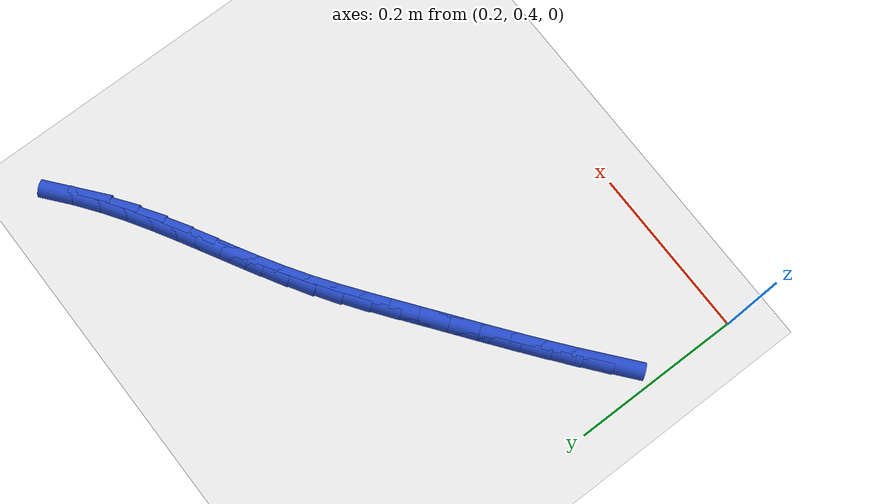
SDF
<sdf version="1.6">
 <world name="default">
  <model name="ground_plane">
   <static>1</static>
   <link name="link">
    <collision name="collision">
     <geometry><plane><normal>0 0 1</normal><size>100 100</size></plane></geometry>
     <surface><friction><ode><mu>100</mu><mu2>50</mu2></ode></friction></surface>
    </collision>
    <visual name="visual">
     <cast_shadows>0</cast_shadows>
     <geometry><plane><normal>0 0 1</normal><size>100 100</size></plane></geometry>
     <material>
      <script><uri>file://media/materials/scripts/gazebo.material</uri><name>Gazebo/WhiteGlow</name></script>
     </material>
    </visual>
   </link>
  </model>
  <model name="line">
   <link name="link_19">
    <pose>0.2447306885756142 0.5328210492532011 0.01 0 1.57 0.6936126866799566</pose>
    <collision name="collision">
     <geometry><cylinder><radius>0.01</radius><length>0.08</length></cylinder></geometry>
    </collision>
    <visual name="visual">
     <material>
      <script><name>Gazebo/Blue</name><uri>file://media/materials/scripts/gazebo.material</uri></script>
     </material>
     <geometry><cylinder><radius>0.01</radius><length>0.08</length></cylinder></geometry>
    </visual>
   </link>
   <link name="link_20">
    <pose>0.2704962606044876 0.554243263948521 0.01 0 1.57 0.6760726265058145</pose>
    <collision name="collision">
     <geometry><cylinder><radius>0.01</radius><length>0.08</length></cylinder></geometry>
    </collision>
    <visual name="visual">
     <material>
      <script><name>Gazebo/Blue</name><uri>file://media/materials/scripts/gazebo.material</uri></script>
     </material>
     <geometry><cylinder><radius>0.01</radius><length>0.08</length></cylinder></geometry>
    </visual>
   </link>
   <link name="link_21">
    <pose>0.2967270630657379 0.5752852541288426 0.01 0 1.57 0.6624973541152003</pose>
    <collision name="collision">
     <geometry><cylinder><radius>0.01</radius><length>0.08</length></cylinder></geometry>
    </collision>
    <visual name="visual">
     <material>
      <script><name>Gazebo/Blue</name><uri>file://media/materials/scripts/gazebo.material</uri></script>
     </material>
     <geometry><cylinder><radius>0.01</radius><length>0.08</length></cylinder></geometry>
    </visual>
   </link>
   <link name="link_22">
    <pose>0.3232825862376289 0.5960015974910671 0.01 0 1.57 0.6527815501281055</pose>
    <collision name="collision">
     <geometry><cylinder><radius>0.01</radius><length>0.08</length></cylinder></geometry>
    </collision>
    <visual name="visual">
     <material>
      <script><name>Gazebo/Blue</name><uri>file://media/materials/scripts/gazebo.material</uri></script>
     </material>
     <geometry><cylinder><radius>0.01</radius><length>0.08</length></cylinder></geometry>
    </visual>
   </link>
   <link name="link_23">
    <pose>0.3500223203984246 0.6164468717320963 0.01 0 1.57 0.6468667538111215</pose>
    <collision name="collision">
     <geometry><cylinder><radius>0.01</radius><length>0.08</length></cylinder></geometry>
    </collision>
    <visual name="visual">
     <material>
      <script><name>Gazebo/Blue</name><uri>file://media/materials/scripts/gazebo.material</uri></script>
     </material>
     <geometry><cylinder><radius>0.01</radius><length>0.08</length></cylinder></geometry>
    </visual>
   </link>
   <link name="link_24">
    <pose>0.3768057558263884 0.6366756545488307 0.01 0 1.57 0.6447445883824877</pose>
    <collision name="collision">
     <geometry><cylinder><radius>0.01</radius><length>0.08</length></cylinder></geometry>
    </collision>
    <visual name="visual">
     <material>
      <script><name>Gazebo/Blue</name><uri>file://media/materials/scripts/gazebo.material</uri></script>
     </material>
     <geometry><cylinder><radius>0.01</radius><length>0.08</length></cylinder></geometry>
    </visual>
   </link>
   <link name="link_25">
    <pose>0.40349238279978406 0.6567425236381718 0.01 0 1.57 0.6462652594409077</pose>
    <collision name="collision">
     <geometry><cylinder><radius>0.01</radius><length>0.08</length></cylinder></geometry>
    </collision>
    <visual name="visual">
     <material>
      <script><name>Gazebo/Blue</name><uri>file://media/materials/scripts/gazebo.material</uri></script>
     </material>
     <geometry><cylinder><radius>0.01</radius><length>0.08</length></cylinder></geometry>
    </visual>
   </link>
   <link name="link_26">
    <pose>0.42994488042396417 0.6766963824401204 0.01 0 1.57 0.6450878106839766</pose>
    <collision name="collision">
     <geometry><cylinder><radius>0.01</radius><length>0.08</length></cylinder></geometry>
    </collision>
    <visual name="visual">
     <material>
      <script><name>Gazebo/Blue</name><uri>file://media/materials/scripts/gazebo.material</uri></script>
     </material>
     <geometry><cylinder><radius>0.01</radius><length>0.08</length></cylinder></geometry>
    </visual>
   </link>
   <link name="link_27">
    <pose>0.45613028760877433 0.6964004346610475 0.01 0 1.57 0.6332548885754912</pose>
    <collision name="collision">
     <geometry><cylinder><radius>0.01</radius><length>0.08</length></cylinder></geometry>
    </collision>
    <visual name="visual">
     <material>
      <script><name>Gazebo/Blue</name><uri>file://media/materials/scripts/gazebo.material</uri></script>
     </material>
     <geometry><cylinder><radius>0.01</radius><length>0.08</length></cylinder></geometry>
    </visual>
   </link>
   <link name="link_28">
    <pose>0.48214084717580136 0.7154950938902668 0.01 0 1.57 0.609632096276374</pose>
    <collision name="collision">
     <geometry><cylinder><radius>0.01</radius><length>0.08</length></cylinder></geometry>
    </collision>
    <visual name="visual">
     <material>
      <script><name>Gazebo/Blue</name><uri>file://media/materials/scripts/gazebo.material</uri></script>
     </material>
     <geometry><cylinder><radius>0.01</radius><length>0.08</length></cylinder></geometry>
    </visual>
   </link>
   <link name="link_29">
    <pose>0.5080762029777084 0.7336076041878276 0.01 0 1.57 0.5744436096678182</pose>
    <collision name="collision">
     <geometry><cylinder><radius>0.01</radius><length>0.08</length></cylinder></geometry>
    </collision>
    <visual name="visual">
     <material>
      <script><name>Gazebo/Blue</name><uri>file://media/materials/scripts/gazebo.material</uri></script>
     </material>
     <geometry><cylinder><radius>0.01</radius><length>0.08</length></cylinder></geometry>
    </visual>
   </link>
   <link name="link_30">
    <pose>0.5340301528876847 0.7504064468693635 0.01 0 1.57 0.540824603150551</pose>
    <collision name="collision">
     <geometry><cylinder><radius>0.01</radius><length>0.08</length></cylinder></geometry>
    </collision>
    <visual name="visual">
     <material>
      <script><name>Gazebo/Blue</name><uri>file://media/materials/scripts/gazebo.material</uri></script>
     </material>
     <geometry><cylinder><radius>0.01</radius><length>0.08</length></cylinder></geometry>
    </visual>
   </link>
   <link name="link_31">
    <pose>0.5600311066978237 0.7660213476022555 0.01 0 1.57 0.518349899339467</pose>
    <collision name="collision">
     <geometry><cylinder><radius>0.01</radius><length>0.08</length></cylinder></geometry>
    </collision>
    <visual name="visual">
     <material>
      <script><name>Gazebo/Blue</name><uri>file://media/materials/scripts/gazebo.material</uri></script>
     </material>
     <geometry><cylinder><radius>0.01</radius><length>0.08</length></cylinder></geometry>
    </visual>
   </link>
   <link name="link_32">
    <pose>0.5860664781020841 0.780871216541192 0.01 0 1.57 0.5080461604106687</pose>
    <collision name="collision">
     <geometry><cylinder><radius>0.01</radius><length>0.08</length></cylinder></geometry>
    </collision>
    <visual name="visual">
     <material>
      <script><name>Gazebo/Blue</name><uri>file://media/materials/scripts/gazebo.material</uri></script>
     </material>
     <geometry><cylinder><radius>0.01</radius><length>0.08</length></cylinder></geometry>
    </visual>
   </link>
   <link name="link_33">
    <pose>0.6121230490440451 0.7953794201773916 0.01 0 1.57 0.5103059193853607</pose>
    <collision name="collision">
     <geometry><cylinder><radius>0.01</radius><length>0.08</length></cylinder></geometry>
    </collision>
    <visual name="visual">
     <material>
      <script><name>Gazebo/Blue</name><uri>file://media/materials/scripts/gazebo.material</uri></script>
     </material>
     <geometry><cylinder><radius>0.01</radius><length>0.08</length></cylinder></geometry>
    </visual>
   </link>
   <link name="link_34">
    <pose>0.6381876014672856 0.8099693250020739 0.01 0 1.57 0.5250256714655829</pose>
    <collision name="collision">
     <geometry><cylinder><radius>0.01</radius><length>0.08</length></cylinder></geometry>
    </collision>
    <visual name="visual">
     <material>
      <script><name>Gazebo/Blue</name><uri>file://media/materials/scripts/gazebo.material</uri></script>
     </material>
     <geometry><cylinder><radius>0.01</radius><length>0.08</length></cylinder></geometry>
    </visual>
   </link>
   <link name="link_35">
    <pose>0.6642469173153848 0.8250642975064575 0.01 0 1.57 0.5516065530024408</pose>
    <collision name="collision">
     <geometry><cylinder><radius>0.01</radius><length>0.08</length></cylinder></geometry>
    </collision>
    <visual name="visual">
     <material>
      <script><name>Gazebo/Blue</name><uri>file://media/materials/scripts/gazebo.material</uri></script>
     </material>
     <geometry><cylinder><radius>0.01</radius><length>0.08</length></cylinder></geometry>
    </visual>
   </link>
   <link name="link_36">
    <pose>0.6902877785319216 0.8410877041817618 0.01 0 1.57 0.5889535420432759</pose>
    <collision name="collision">
     <geometry><cylinder><radius>0.01</radius><length>0.08</length></cylinder></geometry>
    </collision>
    <visual name="visual">
     <material>
      <script><name>Gazebo/Blue</name><uri>file://media/materials/scripts/gazebo.material</uri></script>
     </material>
     <geometry><cylinder><radius>0.01</radius><length>0.08</length></cylinder></geometry>
    </visual>
   </link>
   <link name="link_37">
    <pose>0.716296967060475 0.8584629115192056 0.01 0 1.57 0.6354955214558552</pose>
    <collision name="collision">
     <geometry><cylinder><radius>0.01</radius><length>0.08</length></cylinder></geometry>
    </collision>
    <visual name="visual">
     <material>
      <script><name>Gazebo/Blue</name><uri>file://media/materials/scripts/gazebo.material</uri></script>
     </material>
     <geometry><cylinder><radius>0.01</radius><length>0.08</length></cylinder></geometry>
    </visual>
   </link>
   <link name="link_38">
    <pose>0.742261264844624 0.8776132860100079 0.01 0 1.57 0.6892555066532088</pose>
    <collision name="collision">
     <geometry><cylinder><radius>0.01</radius><length>0.08</length></cylinder></geometry>
    </collision>
    <visual name="visual">
     <material>
      <script><name>Gazebo/Blue</name><uri>file://media/materials/scripts/gazebo.material</uri></script>
     </material>
     <geometry><cylinder><radius>0.01</radius><length>0.08</length></cylinder></geometry>
    </visual>
   </link>
  </model>
 </world>
</sdf>
